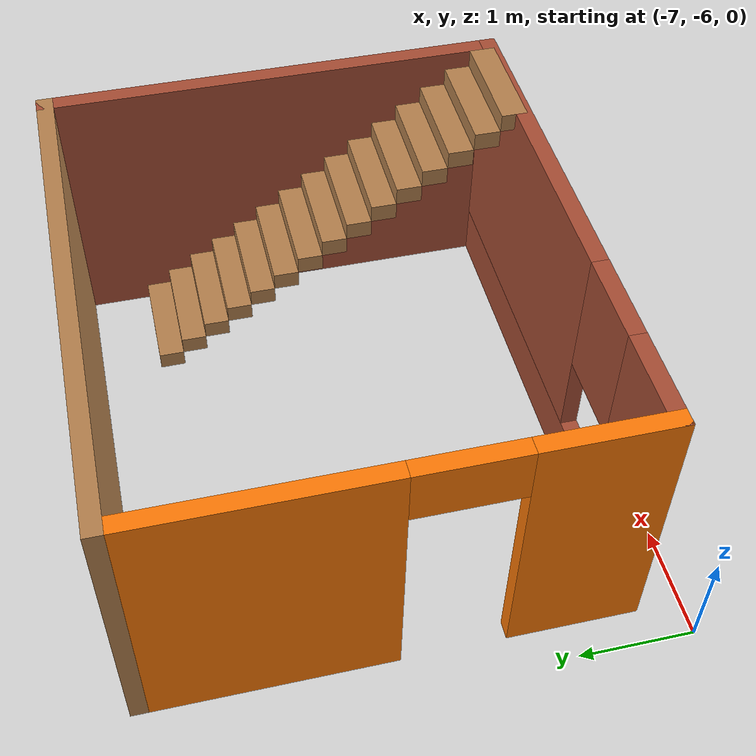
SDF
<?xml version='1.0'?>
<sdf version='1.7'>
  <model name='Room_test'>
    <pose>-3.3525 -2.8075 0 0 -0 0</pose>
    <link name='Stairs_0'>
      <visual name='Stairs_0_Visual_0'>
        <pose>0.7525 0.620834 0.083333 0 -0 0</pose>
        <geometry>
          <box>
            <size>1 0.233333 0.166667</size>
          </box>
        </geometry>
        <material>
          <script>
            <uri>file://media/materials/scripts/gazebo.material</uri>
            <name>Gazebo/Wood</name>
          </script>
          <ambient>0.996078 0.47451 0.0196078 1</ambient>
        </material>
        <meta>
          <layer>0</layer>
        </meta>
      </visual>
      <collision name='Stairs_0_Collision_0'>
        <geometry>
          <box>
            <size>1 0.233333 0.166667</size>
          </box>
        </geometry>
        <pose>0.7525 0.620834 0.083333 0 -0 0</pose>
      </collision>
      <visual name='Stairs_0_Visual_1'>
        <pose>0.7525 0.3875 0.25 0 -0 0</pose>
        <geometry>
          <box>
            <size>1 0.233333 0.166667</size>
          </box>
        </geometry>
        <material>
          <script>
            <uri>file://media/materials/scripts/gazebo.material</uri>
            <name>Gazebo/Wood</name>
          </script>
          <ambient>0.996078 0.47451 0.0196078 1</ambient>
        </material>
        <meta>
          <layer>0</layer>
        </meta>
      </visual>
      <collision name='Stairs_0_Collision_1'>
        <geometry>
          <box>
            <size>1 0.233333 0.166667</size>
          </box>
        </geometry>
        <pose>0.7525 0.3875 0.25 0 -0 0</pose>
      </collision>
      <visual name='Stairs_0_Visual_2'>
        <pose>0.7525 0.154167 0.416667 0 -0 0</pose>
        <geometry>
          <box>
            <size>1 0.233333 0.166667</size>
          </box>
        </geometry>
        <material>
          <script>
            <uri>file://media/materials/scripts/gazebo.material</uri>
            <name>Gazebo/Wood</name>
          </script>
          <ambient>0.996078 0.47451 0.0196078 1</ambient>
        </material>
        <meta>
          <layer>0</layer>
        </meta>
      </visual>
      <collision name='Stairs_0_Collision_2'>
        <geometry>
          <box>
            <size>1 0.233333 0.166667</size>
          </box>
        </geometry>
        <pose>0.7525 0.154167 0.416667 0 -0 0</pose>
      </collision>
      <visual name='Stairs_0_Visual_3'>
        <pose>0.7525 -0.079166 0.583333 0 -0 0</pose>
        <geometry>
          <box>
            <size>1 0.233333 0.166667</size>
          </box>
        </geometry>
        <material>
          <script>
            <uri>file://media/materials/scripts/gazebo.material</uri>
            <name>Gazebo/Wood</name>
          </script>
          <ambient>0.996078 0.47451 0.0196078 1</ambient>
        </material>
        <meta>
          <layer>0</layer>
        </meta>
      </visual>
      <collision name='Stairs_0_Collision_3'>
        <geometry>
          <box>
            <size>1 0.233333 0.166667</size>
          </box>
        </geometry>
        <pose>0.7525 -0.079166 0.583333 0 -0 0</pose>
      </collision>
      <visual name='Stairs_0_Visual_4'>
        <pose>0.7525 -0.3125 0.75 0 -0 0</pose>
        <geometry>
          <box>
            <size>1 0.233333 0.166667</size>
          </box>
        </geometry>
        <material>
          <script>
            <uri>file://media/materials/scripts/gazebo.material</uri>
            <name>Gazebo/Wood</name>
          </script>
          <ambient>0.996078 0.47451 0.0196078 1</ambient>
        </material>
        <meta>
          <layer>0</layer>
        </meta>
      </visual>
      <collision name='Stairs_0_Collision_4'>
        <geometry>
          <box>
            <size>1 0.233333 0.166667</size>
          </box>
        </geometry>
        <pose>0.7525 -0.3125 0.75 0 -0 0</pose>
      </collision>
      <visual name='Stairs_0_Visual_5'>
        <pose>0.7525 -0.545833 0.916667 0 -0 0</pose>
        <geometry>
          <box>
            <size>1 0.233333 0.166667</size>
          </box>
        </geometry>
        <material>
          <script>
            <uri>file://media/materials/scripts/gazebo.material</uri>
            <name>Gazebo/Wood</name>
          </script>
          <ambient>0.996078 0.47451 0.0196078 1</ambient>
        </material>
        <meta>
          <layer>0</layer>
        </meta>
      </visual>
      <collision name='Stairs_0_Collision_5'>
        <geometry>
          <box>
            <size>1 0.233333 0.166667</size>
          </box>
        </geometry>
        <pose>0.7525 -0.545833 0.916667 0 -0 0</pose>
      </collision>
      <visual name='Stairs_0_Visual_6'>
        <pose>0.7525 -0.779166 1.08333 0 -0 0</pose>
        <geometry>
          <box>
            <size>1 0.233333 0.166667</size>
          </box>
        </geometry>
        <material>
          <script>
            <uri>file://media/materials/scripts/gazebo.material</uri>
            <name>Gazebo/Wood</name>
          </script>
          <ambient>0.996078 0.47451 0.0196078 1</ambient>
        </material>
        <meta>
          <layer>0</layer>
        </meta>
      </visual>
      <collision name='Stairs_0_Collision_6'>
        <geometry>
          <box>
            <size>1 0.233333 0.166667</size>
          </box>
        </geometry>
        <pose>0.7525 -0.779166 1.08333 0 -0 0</pose>
      </collision>
      <visual name='Stairs_0_Visual_7'>
        <pose>0.7525 -1.0125 1.25 0 -0 0</pose>
        <geometry>
          <box>
            <size>1 0.233333 0.166667</size>
          </box>
        </geometry>
        <material>
          <script>
            <uri>file://media/materials/scripts/gazebo.material</uri>
            <name>Gazebo/Wood</name>
          </script>
          <ambient>0.996078 0.47451 0.0196078 1</ambient>
        </material>
        <meta>
          <layer>0</layer>
        </meta>
      </visual>
      <collision name='Stairs_0_Collision_7'>
        <geometry>
          <box>
            <size>1 0.233333 0.166667</size>
          </box>
        </geometry>
        <pose>0.7525 -1.0125 1.25 0 -0 0</pose>
      </collision>
      <visual name='Stairs_0_Visual_8'>
        <pose>0.7525 -1.24583 1.41667 0 -0 0</pose>
        <geometry>
          <box>
            <size>1 0.233333 0.166667</size>
          </box>
        </geometry>
        <material>
          <script>
            <uri>file://media/materials/scripts/gazebo.material</uri>
            <name>Gazebo/Wood</name>
          </script>
          <ambient>0.996078 0.47451 0.0196078 1</ambient>
        </material>
        <meta>
          <layer>0</layer>
        </meta>
      </visual>
      <collision name='Stairs_0_Collision_8'>
        <geometry>
          <box>
            <size>1 0.233333 0.166667</size>
          </box>
        </geometry>
        <pose>0.7525 -1.24583 1.41667 0 -0 0</pose>
      </collision>
      <visual name='Stairs_0_Visual_9'>
        <pose>0.7525 -1.47917 1.58333 0 -0 0</pose>
        <geometry>
          <box>
            <size>1 0.233333 0.166667</size>
          </box>
        </geometry>
        <material>
          <script>
            <uri>file://media/materials/scripts/gazebo.material</uri>
            <name>Gazebo/Wood</name>
          </script>
          <ambient>0.996078 0.47451 0.0196078 1</ambient>
        </material>
        <meta>
          <layer>0</layer>
        </meta>
      </visual>
      <collision name='Stairs_0_Collision_9'>
        <geometry>
          <box>
            <size>1 0.233333 0.166667</size>
          </box>
        </geometry>
        <pose>0.7525 -1.47917 1.58333 0 -0 0</pose>
      </collision>
      <visual name='Stairs_0_Visual_10'>
        <pose>0.7525 -1.7125 1.75 0 -0 0</pose>
        <geometry>
          <box>
            <size>1 0.233333 0.166667</size>
          </box>
        </geometry>
        <material>
          <script>
            <uri>file://media/materials/scripts/gazebo.material</uri>
            <name>Gazebo/Wood</name>
          </script>
          <ambient>0.996078 0.47451 0.0196078 1</ambient>
        </material>
        <meta>
          <layer>0</layer>
        </meta>
      </visual>
      <collision name='Stairs_0_Collision_10'>
        <geometry>
          <box>
            <size>1 0.233333 0.166667</size>
          </box>
        </geometry>
        <pose>0.7525 -1.7125 1.75 0 -0 0</pose>
      </collision>
      <visual name='Stairs_0_Visual_11'>
        <pose>0.7525 -1.94583 1.91667 0 -0 0</pose>
        <geometry>
          <box>
            <size>1 0.233333 0.166667</size>
          </box>
        </geometry>
        <material>
          <script>
            <uri>file://media/materials/scripts/gazebo.material</uri>
            <name>Gazebo/Wood</name>
          </script>
          <ambient>0.996078 0.47451 0.0196078 1</ambient>
        </material>
        <meta>
          <layer>0</layer>
        </meta>
      </visual>
      <collision name='Stairs_0_Collision_11'>
        <geometry>
          <box>
            <size>1 0.233333 0.166667</size>
          </box>
        </geometry>
        <pose>0.7525 -1.94583 1.91667 0 -0 0</pose>
      </collision>
      <visual name='Stairs_0_Visual_12'>
        <pose>0.7525 -2.17917 2.08333 0 -0 0</pose>
        <geometry>
          <box>
            <size>1 0.233333 0.166667</size>
          </box>
        </geometry>
        <material>
          <script>
            <uri>file://media/materials/scripts/gazebo.material</uri>
            <name>Gazebo/Wood</name>
          </script>
          <ambient>0.996078 0.47451 0.0196078 1</ambient>
        </material>
        <meta>
          <layer>0</layer>
        </meta>
      </visual>
      <collision name='Stairs_0_Collision_12'>
        <geometry>
          <box>
            <size>1 0.233333 0.166667</size>
          </box>
        </geometry>
        <pose>0.7525 -2.17917 2.08333 0 -0 0</pose>
      </collision>
      <visual name='Stairs_0_Visual_13'>
        <pose>0.7525 -2.4125 2.25 0 -0 0</pose>
        <geometry>
          <box>
            <size>1 0.233333 0.166667</size>
          </box>
        </geometry>
        <material>
          <script>
            <uri>file://media/materials/scripts/gazebo.material</uri>
            <name>Gazebo/Wood</name>
          </script>
          <ambient>0.996078 0.47451 0.0196078 1</ambient>
        </material>
        <meta>
          <layer>0</layer>
        </meta>
      </visual>
      <collision name='Stairs_0_Collision_13'>
        <geometry>
          <box>
            <size>1 0.233333 0.166667</size>
          </box>
        </geometry>
        <pose>0.7525 -2.4125 2.25 0 -0 0</pose>
      </collision>
      <visual name='Stairs_0_Visual_14'>
        <pose>0.7525 -2.64583 2.41667 0 -0 0</pose>
        <geometry>
          <box>
            <size>1 0.233333 0.166667</size>
          </box>
        </geometry>
        <material>
          <script>
            <uri>file://media/materials/scripts/gazebo.material</uri>
            <name>Gazebo/Wood</name>
          </script>
          <ambient>0.996078 0.47451 0.0196078 1</ambient>
        </material>
        <meta>
          <layer>0</layer>
        </meta>
      </visual>
      <collision name='Stairs_0_Collision_14'>
        <geometry>
          <box>
            <size>1 0.233333 0.166667</size>
          </box>
        </geometry>
        <pose>0.7525 -2.64583 2.41667 0 -0 0</pose>
      </collision>
    </link>
    <link name='Wall_0'>
      <collision name='Wall_0_Collision'>
        <geometry>
          <box>
            <size>4.75 0.15 2.5</size>
          </box>
        </geometry>
        <pose>0 0 1.25 0 -0 0</pose>
      </collision>
      <visual name='Wall_0_Visual'>
        <pose>0 0 1.25 0 -0 0</pose>
        <geometry>
          <box>
            <size>4.75 0.15 2.5</size>
          </box>
        </geometry>
        <material>
          <script>
            <uri>file://media/materials/scripts/gazebo.material</uri>
            <name>Gazebo/Wood</name>
          </script>
          <ambient>1 1 1 1</ambient>
        </material>
        <meta>
          <layer>0</layer>
        </meta>
      </visual>
      <pose>-0.9775 1.3675 0 0 -0 3.14159</pose>
    </link>
    <link name='Wall_1'>
      <pose>-3.2775 -0.6825 0 0 -0 -1.5708</pose>
      <visual name='Wall_1_Visual_0'>
        <pose>-1.0225 0 1.25 0 -0 0</pose>
        <geometry>
          <box>
            <size>2.205 0.15 2.5</size>
          </box>
        </geometry>
        <material>
          <script>
            <uri>file://media/materials/scripts/gazebo.material</uri>
            <name>Gazebo/Grey</name>
          </script>
          <ambient>0.996078 0.47451 0.0196078 1</ambient>
        </material>
        <meta>
          <layer>0</layer>
        </meta>
      </visual>
      <collision name='Wall_1_Collision_0'>
        <geometry>
          <box>
            <size>2.205 0.15 2.5</size>
          </box>
        </geometry>
        <pose>-1.0225 0 1.25 0 -0 0</pose>
      </collision>
      <visual name='Wall_1_Visual_1'>
        <pose>1.5525 0 1.25 0 -0 0</pose>
        <geometry>
          <box>
            <size>1.145 0.15 2.5</size>
          </box>
        </geometry>
        <material>
          <script>
            <uri>file://media/materials/scripts/gazebo.material</uri>
            <name>Gazebo/Grey</name>
          </script>
          <ambient>0.996078 0.47451 0.0196078 1</ambient>
        </material>
        <meta>
          <layer>0</layer>
        </meta>
      </visual>
      <collision name='Wall_1_Collision_1'>
        <geometry>
          <box>
            <size>1.145 0.15 2.5</size>
          </box>
        </geometry>
        <pose>1.5525 0 1.25 0 -0 0</pose>
      </collision>
      <visual name='Wall_1_Visual_2'>
        <pose>0.53 0 2.25 0 -0 0</pose>
        <geometry>
          <box>
            <size>0.9 0.15 0.5</size>
          </box>
        </geometry>
        <material>
          <script>
            <uri>file://media/materials/scripts/gazebo.material</uri>
            <name>Gazebo/Grey</name>
          </script>
          <ambient>0.996078 0.47451 0.0196078 1</ambient>
        </material>
        <meta>
          <layer>0</layer>
        </meta>
      </visual>
      <collision name='Wall_1_Collision_2'>
        <geometry>
          <box>
            <size>0.9 0.15 0.5</size>
          </box>
        </geometry>
        <pose>0.53 0 2.25 0 -0 0</pose>
      </collision>
    </link>
    <link name='Wall_2'>
      <pose>-0.9775 -2.7325 0 0 -0 0</pose>
      <visual name='Wall_2_Visual_0'>
        <pose>-1.9275 0 1.25 0 -0 0</pose>
        <geometry>
          <box>
            <size>0.895 0.15 2.5</size>
          </box>
        </geometry>
        <material>
          <script>
            <uri>file://media/materials/scripts/gazebo.material</uri>
            <name>Gazebo/Bricks</name>
          </script>
          <ambient>1 1 1 1</ambient>
        </material>
        <meta>
          <layer>0</layer>
        </meta>
      </visual>
      <collision name='Wall_2_Collision_0'>
        <geometry>
          <box>
            <size>0.895 0.15 2.5</size>
          </box>
        </geometry>
        <pose>-1.9275 0 1.25 0 -0 0</pose>
      </collision>
      <visual name='Wall_2_Visual_1'>
        <pose>0.4475 0 0.25 0 -0 0</pose>
        <geometry>
          <box>
            <size>3.855 0.15 0.5</size>
          </box>
        </geometry>
        <material>
          <script>
            <uri>file://media/materials/scripts/gazebo.material</uri>
            <name>Gazebo/Bricks</name>
          </script>
          <ambient>1 1 1 1</ambient>
        </material>
        <meta>
          <layer>0</layer>
        </meta>
      </visual>
      <collision name='Wall_2_Collision_1'>
        <geometry>
          <box>
            <size>3.855 0.15 0.5</size>
          </box>
        </geometry>
        <pose>0.4475 0 0.25 0 -0 0</pose>
      </collision>
      <visual name='Wall_2_Visual_2'>
        <pose>0.8475 0 1.5 0 -0 0</pose>
        <geometry>
          <box>
            <size>3.055 0.15 2</size>
          </box>
        </geometry>
        <material>
          <script>
            <uri>file://media/materials/scripts/gazebo.material</uri>
            <name>Gazebo/Bricks</name>
          </script>
          <ambient>1 1 1 1</ambient>
        </material>
        <meta>
          <layer>0</layer>
        </meta>
      </visual>
      <collision name='Wall_2_Collision_2'>
        <geometry>
          <box>
            <size>3.055 0.15 2</size>
          </box>
        </geometry>
        <pose>0.8475 0 1.5 0 -0 0</pose>
      </collision>
      <visual name='Wall_2_Visual_3'>
        <pose>-1.08 0 1.9 0 -0 0</pose>
        <geometry>
          <box>
            <size>0.8 0.15 1.2</size>
          </box>
        </geometry>
        <material>
          <script>
            <uri>file://media/materials/scripts/gazebo.material</uri>
            <name>Gazebo/Bricks</name>
          </script>
          <ambient>1 1 1 1</ambient>
        </material>
        <meta>
          <layer>0</layer>
        </meta>
      </visual>
      <collision name='Wall_2_Collision_3'>
        <geometry>
          <box>
            <size>0.8 0.15 1.2</size>
          </box>
        </geometry>
        <pose>-1.08 0 1.9 0 -0 0</pose>
      </collision>
    </link>
    <link name='Wall_3'>
      <collision name='Wall_3_Collision'>
        <geometry>
          <box>
            <size>4.25 0.15 2.5</size>
          </box>
        </geometry>
        <pose>0 0 1.25 0 -0 0</pose>
      </collision>
      <visual name='Wall_3_Visual'>
        <pose>0 0 1.25 0 -0 0</pose>
        <geometry>
          <box>
            <size>4.25 0.15 2.5</size>
          </box>
        </geometry>
        <material>
          <script>
            <uri>file://media/materials/scripts/gazebo.material</uri>
            <name>Gazebo/Bricks</name>
          </script>
          <ambient>1 1 1 1</ambient>
        </material>
        <meta>
          <layer>0</layer>
        </meta>
      </visual>
      <pose>1.3225 -0.6825 0 0 -0 1.5708</pose>
    </link>
    <static>1</static>
  </model>
</sdf>
